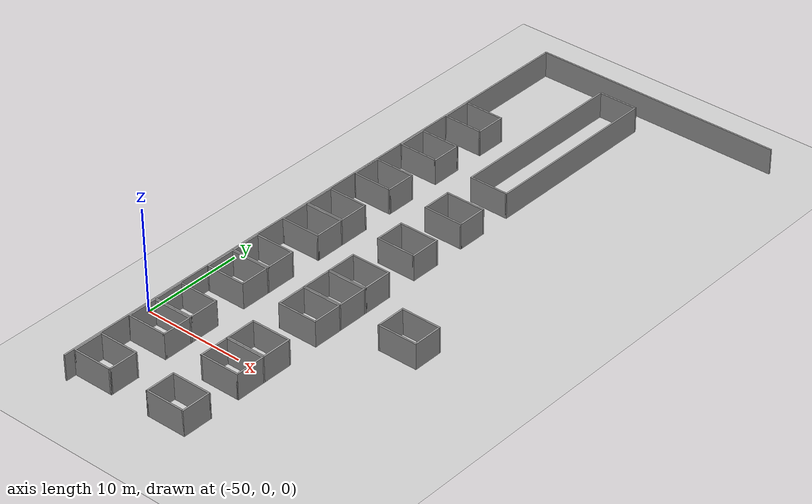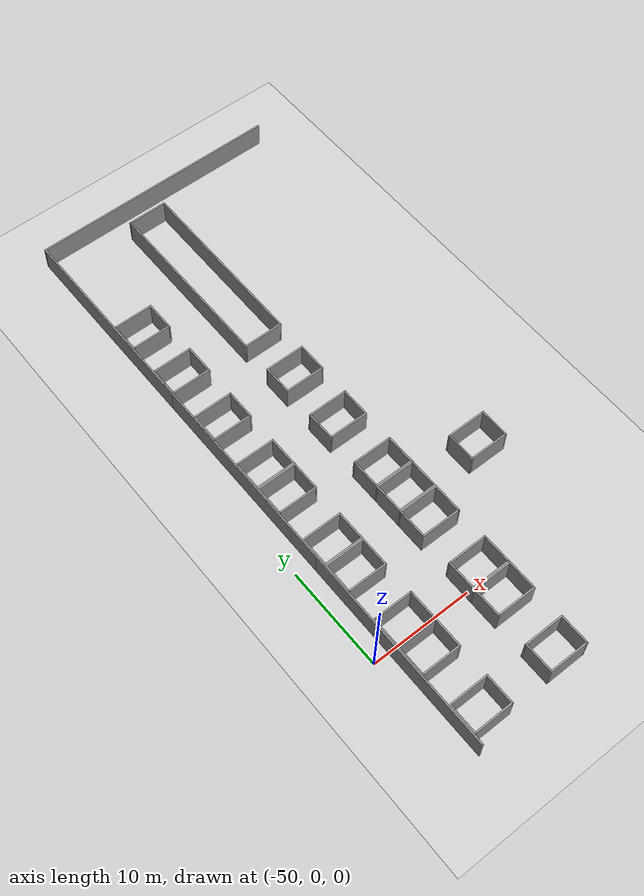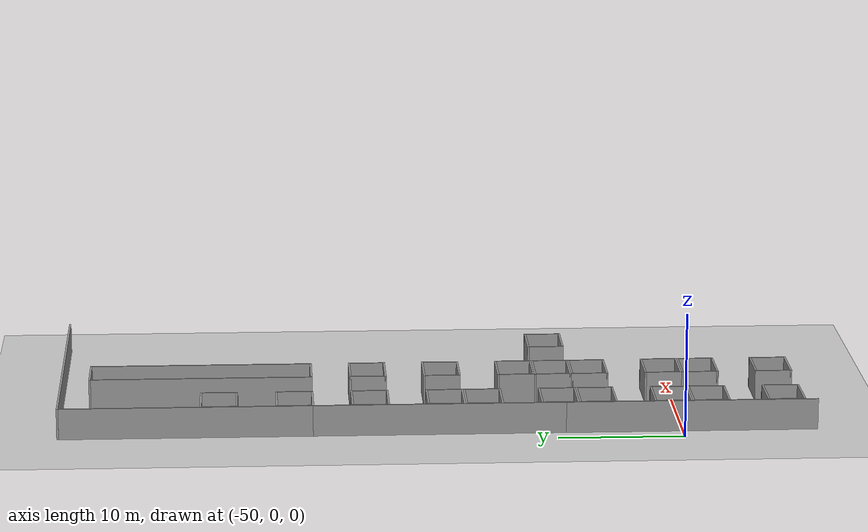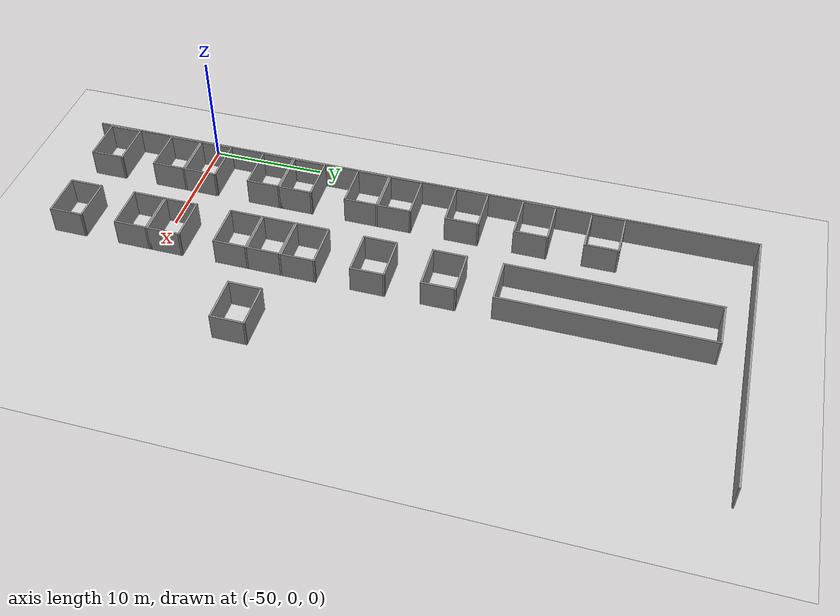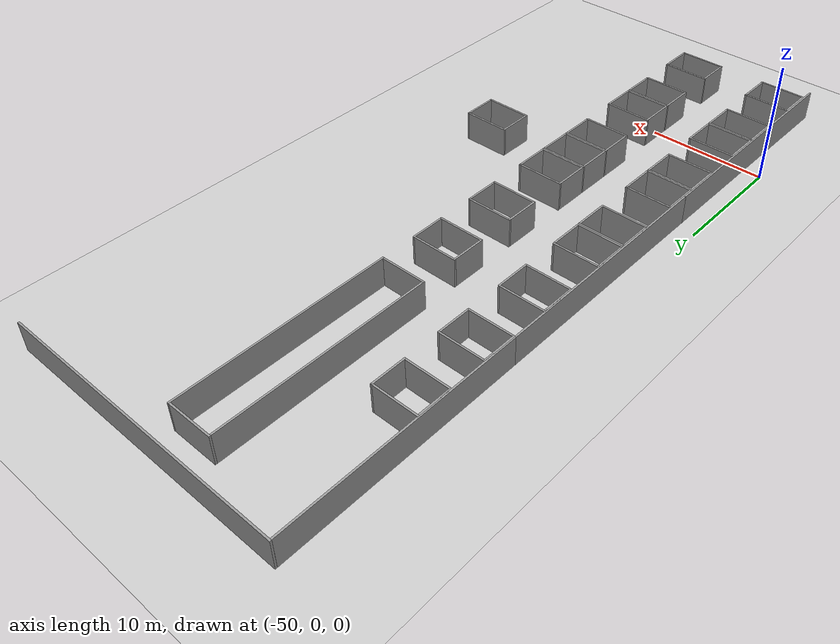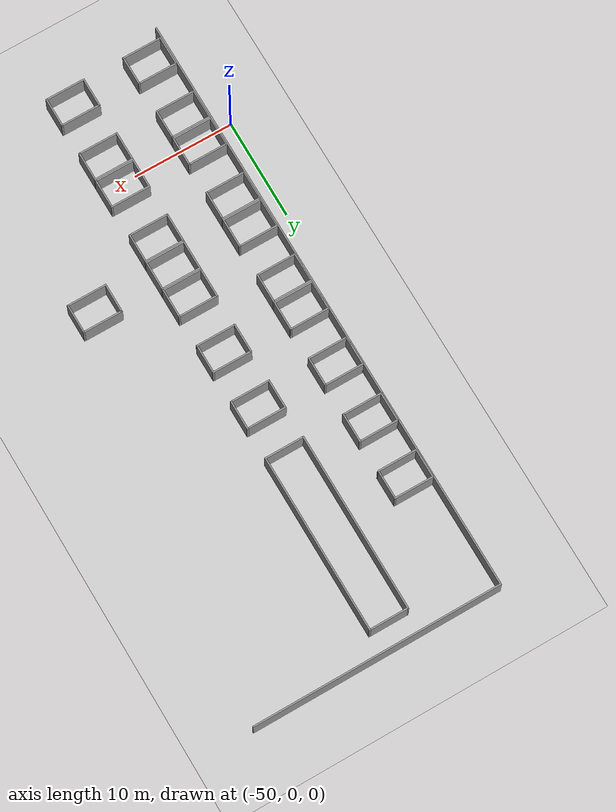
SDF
<sdf version="1.6">
 <world name="default">
  <model name="ground_plane">
   <static>1</static>
   <link name="link">
    <collision name="collision">
     <geometry><plane><normal>0 0 1</normal><size>105 105</size></plane></geometry>
     <surface>
      <contact><collide_bitmask>65535</collide_bitmask></contact>
      <friction><ode><mu>100</mu><mu2>50</mu2></ode></friction>
     </surface>
    </collision>
    <visual name="visual">
     <cast_shadows>0</cast_shadows>
     <geometry><plane><normal>0 0 1</normal><size>105 105</size></plane></geometry>
     <material>
      <script><uri>file://media/materials/scripts/gazebo.material</uri><name>Gazebo/Grey</name></script>
     </material>
    </visual>
   </link>
  </model>
  <model name="wall_v20m_0">
   <pose>-48.4193 -0.726683 0 0 -0 0</pose>
   <link name="Wall_35">
    <collision name="Wall_35_Collision">
     <geometry><box><size>20 0.15 2.5</size></box></geometry>
     <pose>0 0 1.25 0 -0 0</pose>
    </collision>
    <visual name="Wall_35_Visual">
     <pose>0 0 1.25 0 -0 0</pose>
     <geometry><box><size>20 0.15 2.5</size></box></geometry>
     <material>
      <script><uri>file://media/materials/scripts/gazebo.material</uri><name>Gazebo/Grey</name></script>
      <ambient>1 1 1 1</ambient>
     </material>
     <meta><layer>0</layer></meta>
    </visual>
    <pose>0 -0 0 0 -0 -1.5708</pose>
   </link>
   <static>1</static>
  </model>
  <model name="wall_v20m_1">
   <pose>-48.4186 19.2715 0 0 -0 0</pose>
   <link name="Wall_35">
    <collision name="Wall_35_Collision">
     <geometry><box><size>20 0.15 2.5</size></box></geometry>
     <pose>0 0 1.25 0 -0 0</pose>
    </collision>
    <visual name="Wall_35_Visual">
     <pose>0 0 1.25 0 -0 0</pose>
     <geometry><box><size>20 0.15 2.5</size></box></geometry>
     <material>
      <script><uri>file://media/materials/scripts/gazebo.material</uri><name>Gazebo/Grey</name></script>
      <ambient>1 1 1 1</ambient>
     </material>
     <meta><layer>0</layer></meta>
    </visual>
    <pose>0 -0 0 0 -0 -1.5708</pose>
   </link>
   <static>1</static>
  </model>
  <model name="wall_v20m_2">
   <pose>-48.4188 39.2704 0 0 -0 0</pose>
   <link name="Wall_35">
    <collision name="Wall_35_Collision">
     <geometry><box><size>20 0.15 2.5</size></box></geometry>
     <pose>0 0 1.25 0 -0 0</pose>
    </collision>
    <visual name="Wall_35_Visual">
     <pose>0 0 1.25 0 -0 0</pose>
     <geometry><box><size>20 0.15 2.5</size></box></geometry>
     <material>
      <script><uri>file://media/materials/scripts/gazebo.material</uri><name>Gazebo/Grey</name></script>
      <ambient>1 1 1 1</ambient>
     </material>
     <meta><layer>0</layer></meta>
    </visual>
    <pose>0 -0 0 0 -0 -1.5708</pose>
   </link>
   <static>1</static>
  </model>
  <model name="wall_25m_3">
   <pose>-35.9923 49.3467 0 0 -0 0</pose>
   <link name="Wall_28">
    <collision name="Wall_28_Collision">
     <geometry><box><size>25 0.15 2.5</size></box></geometry>
     <pose>0 0 1.25 0 -0 0</pose>
    </collision>
    <visual name="Wall_28_Visual">
     <pose>0 0 1.25 0 -0 0</pose>
     <geometry><box><size>25 0.15 2.5</size></box></geometry>
     <material>
      <script><uri>file://media/materials/scripts/gazebo.material</uri><name>Gazebo/Grey</name></script>
      <ambient>1 1 1 1</ambient>
     </material>
     <meta><layer>0</layer></meta>
    </visual>
   </link>
   <static>1</static>
  </model>
  <model name="base3x4_40">
   <pose>-46.3508 -8.23033 0 0 -0 0</pose>
   <link name="Wall_18">
    <collision name="Wall_18_Collision">
     <geometry><box><size>3 0.15 2.5</size></box></geometry>
     <pose>0 0 1.25 0 -0 0</pose>
    </collision>
    <visual name="Wall_18_Visual">
     <pose>0 0 1.25 0 -0 0</pose>
     <geometry><box><size>3 0.15 2.5</size></box></geometry>
     <material>
      <script><uri>file://media/materials/scripts/gazebo.material</uri><name>Gazebo/Grey</name></script>
      <ambient>1 1 1 1</ambient>
     </material>
     <meta><layer>0</layer></meta>
    </visual>
    <pose>-1.925 -0 0 0 -0 -1.5708</pose>
   </link>
   <link name="Wall_19">
    <collision name="Wall_19_Collision">
     <geometry><box><size>4 0.15 2.5</size></box></geometry>
     <pose>0 0 1.25 0 -0 0</pose>
    </collision>
    <visual name="Wall_19_Visual">
     <pose>0 0 1.25 0 -0 0</pose>
     <geometry><box><size>4 0.15 2.5</size></box></geometry>
     <material>
      <script><uri>file://media/materials/scripts/gazebo.material</uri><name>Gazebo/Grey</name></script>
      <ambient>1 1 1 1</ambient>
     </material>
     <meta><layer>0</layer></meta>
    </visual>
    <pose>-0 -1.425 0 0 -0 0</pose>
   </link>
   <link name="Wall_20">
    <collision name="Wall_20_Collision">
     <geometry><box><size>3 0.15 2.5</size></box></geometry>
     <pose>0 0 1.25 0 -0 0</pose>
    </collision>
    <visual name="Wall_20_Visual">
     <pose>0 0 1.25 0 -0 0</pose>
     <geometry><box><size>3 0.15 2.5</size></box></geometry>
     <material>
      <script><uri>file://media/materials/scripts/gazebo.material</uri><name>Gazebo/Grey</name></script>
      <ambient>1 1 1 1</ambient>
     </material>
     <meta><layer>0</layer></meta>
    </visual>
    <pose>1.925 -0 0 0 -0 1.5708</pose>
   </link>
   <link name="Wall_21">
    <collision name="Wall_21_Collision">
     <geometry><box><size>4 0.15 2.5</size></box></geometry>
     <pose>0 0 1.25 0 -0 0</pose>
    </collision>
    <visual name="Wall_21_Visual">
     <pose>0 0 1.25 0 -0 0</pose>
     <geometry><box><size>4 0.15 2.5</size></box></geometry>
     <material>
      <script><uri>file://media/materials/scripts/gazebo.material</uri><name>Gazebo/Grey</name></script>
      <ambient>1 1 1 1</ambient>
     </material>
     <meta><layer>0</layer></meta>
    </visual>
    <pose>-0 1.425 0 0 -0 3.14159</pose>
   </link>
   <static>1</static>
  </model>
  <model name="base3x4_42">
   <pose>-46.3729 -2.24361 0 0 -0 0</pose>
   <link name="Wall_18">
    <collision name="Wall_18_Collision">
     <geometry><box><size>3 0.15 2.5</size></box></geometry>
     <pose>0 0 1.25 0 -0 0</pose>
    </collision>
    <visual name="Wall_18_Visual">
     <pose>0 0 1.25 0 -0 0</pose>
     <geometry><box><size>3 0.15 2.5</size></box></geometry>
     <material>
      <script><uri>file://media/materials/scripts/gazebo.material</uri><name>Gazebo/Grey</name></script>
      <ambient>1 1 1 1</ambient>
     </material>
     <meta><layer>0</layer></meta>
    </visual>
    <pose>-1.925 -0 0 0 -0 -1.5708</pose>
   </link>
   <link name="Wall_19">
    <collision name="Wall_19_Collision">
     <geometry><box><size>4 0.15 2.5</size></box></geometry>
     <pose>0 0 1.25 0 -0 0</pose>
    </collision>
    <visual name="Wall_19_Visual">
     <pose>0 0 1.25 0 -0 0</pose>
     <geometry><box><size>4 0.15 2.5</size></box></geometry>
     <material>
      <script><uri>file://media/materials/scripts/gazebo.material</uri><name>Gazebo/Grey</name></script>
      <ambient>1 1 1 1</ambient>
     </material>
     <meta><layer>0</layer></meta>
    </visual>
    <pose>-0 -1.425 0 0 -0 0</pose>
   </link>
   <link name="Wall_20">
    <collision name="Wall_20_Collision">
     <geometry><box><size>3 0.15 2.5</size></box></geometry>
     <pose>0 0 1.25 0 -0 0</pose>
    </collision>
    <visual name="Wall_20_Visual">
     <pose>0 0 1.25 0 -0 0</pose>
     <geometry><box><size>3 0.15 2.5</size></box></geometry>
     <material>
      <script><uri>file://media/materials/scripts/gazebo.material</uri><name>Gazebo/Grey</name></script>
      <ambient>1 1 1 1</ambient>
     </material>
     <meta><layer>0</layer></meta>
    </visual>
    <pose>1.925 -0 0 0 -0 1.5708</pose>
   </link>
   <link name="Wall_21">
    <collision name="Wall_21_Collision">
     <geometry><box><size>4 0.15 2.5</size></box></geometry>
     <pose>0 0 1.25 0 -0 0</pose>
    </collision>
    <visual name="Wall_21_Visual">
     <pose>0 0 1.25 0 -0 0</pose>
     <geometry><box><size>4 0.15 2.5</size></box></geometry>
     <material>
      <script><uri>file://media/materials/scripts/gazebo.material</uri><name>Gazebo/Grey</name></script>
      <ambient>1 1 1 1</ambient>
     </material>
     <meta><layer>0</layer></meta>
    </visual>
    <pose>-0 1.425 0 0 -0 3.14159</pose>
   </link>
   <static>1</static>
  </model>
  <model name="base3x4_43">
   <pose>-46.3734 0.757545 0 0 -0 0</pose>
   <link name="Wall_18">
    <collision name="Wall_18_Collision">
     <geometry><box><size>3 0.15 2.5</size></box></geometry>
     <pose>0 0 1.25 0 -0 0</pose>
    </collision>
    <visual name="Wall_18_Visual">
     <pose>0 0 1.25 0 -0 0</pose>
     <geometry><box><size>3 0.15 2.5</size></box></geometry>
     <material>
      <script><uri>file://media/materials/scripts/gazebo.material</uri><name>Gazebo/Grey</name></script>
      <ambient>1 1 1 1</ambient>
     </material>
     <meta><layer>0</layer></meta>
    </visual>
    <pose>-1.925 -0 0 0 -0 -1.5708</pose>
   </link>
   <link name="Wall_19">
    <collision name="Wall_19_Collision">
     <geometry><box><size>4 0.15 2.5</size></box></geometry>
     <pose>0 0 1.25 0 -0 0</pose>
    </collision>
    <visual name="Wall_19_Visual">
     <pose>0 0 1.25 0 -0 0</pose>
     <geometry><box><size>4 0.15 2.5</size></box></geometry>
     <material>
      <script><uri>file://media/materials/scripts/gazebo.material</uri><name>Gazebo/Grey</name></script>
      <ambient>1 1 1 1</ambient>
     </material>
     <meta><layer>0</layer></meta>
    </visual>
    <pose>-0 -1.425 0 0 -0 0</pose>
   </link>
   <link name="Wall_20">
    <collision name="Wall_20_Collision">
     <geometry><box><size>3 0.15 2.5</size></box></geometry>
     <pose>0 0 1.25 0 -0 0</pose>
    </collision>
    <visual name="Wall_20_Visual">
     <pose>0 0 1.25 0 -0 0</pose>
     <geometry><box><size>3 0.15 2.5</size></box></geometry>
     <material>
      <script><uri>file://media/materials/scripts/gazebo.material</uri><name>Gazebo/Grey</name></script>
      <ambient>1 1 1 1</ambient>
     </material>
     <meta><layer>0</layer></meta>
    </visual>
    <pose>1.925 -0 0 0 -0 1.5708</pose>
   </link>
   <link name="Wall_21">
    <collision name="Wall_21_Collision">
     <geometry><box><size>4 0.15 2.5</size></box></geometry>
     <pose>0 0 1.25 0 -0 0</pose>
    </collision>
    <visual name="Wall_21_Visual">
     <pose>0 0 1.25 0 -0 0</pose>
     <geometry><box><size>4 0.15 2.5</size></box></geometry>
     <material>
      <script><uri>file://media/materials/scripts/gazebo.material</uri><name>Gazebo/Grey</name></script>
      <ambient>1 1 1 1</ambient>
     </material>
     <meta><layer>0</layer></meta>
    </visual>
    <pose>-0 1.425 0 0 -0 3.14159</pose>
   </link>
   <static>1</static>
  </model>
  <model name="base3x4_45">
   <pose>-46.3788 6.73628 0 0 -0 0</pose>
   <link name="Wall_18">
    <collision name="Wall_18_Collision">
     <geometry><box><size>3 0.15 2.5</size></box></geometry>
     <pose>0 0 1.25 0 -0 0</pose>
    </collision>
    <visual name="Wall_18_Visual">
     <pose>0 0 1.25 0 -0 0</pose>
     <geometry><box><size>3 0.15 2.5</size></box></geometry>
     <material>
      <script><uri>file://media/materials/scripts/gazebo.material</uri><name>Gazebo/Grey</name></script>
      <ambient>1 1 1 1</ambient>
     </material>
     <meta><layer>0</layer></meta>
    </visual>
    <pose>-1.925 -0 0 0 -0 -1.5708</pose>
   </link>
   <link name="Wall_19">
    <collision name="Wall_19_Collision">
     <geometry><box><size>4 0.15 2.5</size></box></geometry>
     <pose>0 0 1.25 0 -0 0</pose>
    </collision>
    <visual name="Wall_19_Visual">
     <pose>0 0 1.25 0 -0 0</pose>
     <geometry><box><size>4 0.15 2.5</size></box></geometry>
     <material>
      <script><uri>file://media/materials/scripts/gazebo.material</uri><name>Gazebo/Grey</name></script>
      <ambient>1 1 1 1</ambient>
     </material>
     <meta><layer>0</layer></meta>
    </visual>
    <pose>-0 -1.425 0 0 -0 0</pose>
   </link>
   <link name="Wall_20">
    <collision name="Wall_20_Collision">
     <geometry><box><size>3 0.15 2.5</size></box></geometry>
     <pose>0 0 1.25 0 -0 0</pose>
    </collision>
    <visual name="Wall_20_Visual">
     <pose>0 0 1.25 0 -0 0</pose>
     <geometry><box><size>3 0.15 2.5</size></box></geometry>
     <material>
      <script><uri>file://media/materials/scripts/gazebo.material</uri><name>Gazebo/Grey</name></script>
      <ambient>1 1 1 1</ambient>
     </material>
     <meta><layer>0</layer></meta>
    </visual>
    <pose>1.925 -0 0 0 -0 1.5708</pose>
   </link>
   <link name="Wall_21">
    <collision name="Wall_21_Collision">
     <geometry><box><size>4 0.15 2.5</size></box></geometry>
     <pose>0 0 1.25 0 -0 0</pose>
    </collision>
    <visual name="Wall_21_Visual">
     <pose>0 0 1.25 0 -0 0</pose>
     <geometry><box><size>4 0.15 2.5</size></box></geometry>
     <material>
      <script><uri>file://media/materials/scripts/gazebo.material</uri><name>Gazebo/Grey</name></script>
      <ambient>1 1 1 1</ambient>
     </material>
     <meta><layer>0</layer></meta>
    </visual>
    <pose>-0 1.425 0 0 -0 3.14159</pose>
   </link>
   <static>1</static>
  </model>
  <model name="base3x4_46">
   <pose>-46.3764 9.73349 0 0 -0 0</pose>
   <link name="Wall_18">
    <collision name="Wall_18_Collision">
     <geometry><box><size>3 0.15 2.5</size></box></geometry>
     <pose>0 0 1.25 0 -0 0</pose>
    </collision>
    <visual name="Wall_18_Visual">
     <pose>0 0 1.25 0 -0 0</pose>
     <geometry><box><size>3 0.15 2.5</size></box></geometry>
     <material>
      <script><uri>file://media/materials/scripts/gazebo.material</uri><name>Gazebo/Grey</name></script>
      <ambient>1 1 1 1</ambient>
     </material>
     <meta><layer>0</layer></meta>
    </visual>
    <pose>-1.925 -0 0 0 -0 -1.5708</pose>
   </link>
   <link name="Wall_19">
    <collision name="Wall_19_Collision">
     <geometry><box><size>4 0.15 2.5</size></box></geometry>
     <pose>0 0 1.25 0 -0 0</pose>
    </collision>
    <visual name="Wall_19_Visual">
     <pose>0 0 1.25 0 -0 0</pose>
     <geometry><box><size>4 0.15 2.5</size></box></geometry>
     <material>
      <script><uri>file://media/materials/scripts/gazebo.material</uri><name>Gazebo/Grey</name></script>
      <ambient>1 1 1 1</ambient>
     </material>
     <meta><layer>0</layer></meta>
    </visual>
    <pose>-0 -1.425 0 0 -0 0</pose>
   </link>
   <link name="Wall_20">
    <collision name="Wall_20_Collision">
     <geometry><box><size>3 0.15 2.5</size></box></geometry>
     <pose>0 0 1.25 0 -0 0</pose>
    </collision>
    <visual name="Wall_20_Visual">
     <pose>0 0 1.25 0 -0 0</pose>
     <geometry><box><size>3 0.15 2.5</size></box></geometry>
     <material>
      <script><uri>file://media/materials/scripts/gazebo.material</uri><name>Gazebo/Grey</name></script>
      <ambient>1 1 1 1</ambient>
     </material>
     <meta><layer>0</layer></meta>
    </visual>
    <pose>1.925 -0 0 0 -0 1.5708</pose>
   </link>
   <link name="Wall_21">
    <collision name="Wall_21_Collision">
     <geometry><box><size>4 0.15 2.5</size></box></geometry>
     <pose>0 0 1.25 0 -0 0</pose>
    </collision>
    <visual name="Wall_21_Visual">
     <pose>0 0 1.25 0 -0 0</pose>
     <geometry><box><size>4 0.15 2.5</size></box></geometry>
     <material>
      <script><uri>file://media/materials/scripts/gazebo.material</uri><name>Gazebo/Grey</name></script>
      <ambient>1 1 1 1</ambient>
     </material>
     <meta><layer>0</layer></meta>
    </visual>
    <pose>-0 1.425 0 0 -0 3.14159</pose>
   </link>
   <static>1</static>
  </model>
  <model name="base3x4_48">
   <pose>-46.3853 15.7231 0 0 -0 0</pose>
   <link name="Wall_18">
    <collision name="Wall_18_Collision">
     <geometry><box><size>3 0.15 2.5</size></box></geometry>
     <pose>0 0 1.25 0 -0 0</pose>
    </collision>
    <visual name="Wall_18_Visual">
     <pose>0 0 1.25 0 -0 0</pose>
     <geometry><box><size>3 0.15 2.5</size></box></geometry>
     <material>
      <script><uri>file://media/materials/scripts/gazebo.material</uri><name>Gazebo/Grey</name></script>
      <ambient>1 1 1 1</ambient>
     </material>
     <meta><layer>0</layer></meta>
    </visual>
    <pose>-1.925 -0 0 0 -0 -1.5708</pose>
   </link>
   <link name="Wall_19">
    <collision name="Wall_19_Collision">
     <geometry><box><size>4 0.15 2.5</size></box></geometry>
     <pose>0 0 1.25 0 -0 0</pose>
    </collision>
    <visual name="Wall_19_Visual">
     <pose>0 0 1.25 0 -0 0</pose>
     <geometry><box><size>4 0.15 2.5</size></box></geometry>
     <material>
      <script><uri>file://media/materials/scripts/gazebo.material</uri><name>Gazebo/Grey</name></script>
      <ambient>1 1 1 1</ambient>
     </material>
     <meta><layer>0</layer></meta>
    </visual>
    <pose>-0 -1.425 0 0 -0 0</pose>
   </link>
   <link name="Wall_20">
    <collision name="Wall_20_Collision">
     <geometry><box><size>3 0.15 2.5</size></box></geometry>
     <pose>0 0 1.25 0 -0 0</pose>
    </collision>
    <visual name="Wall_20_Visual">
     <pose>0 0 1.25 0 -0 0</pose>
     <geometry><box><size>3 0.15 2.5</size></box></geometry>
     <material>
      <script><uri>file://media/materials/scripts/gazebo.material</uri><name>Gazebo/Grey</name></script>
      <ambient>1 1 1 1</ambient>
     </material>
     <meta><layer>0</layer></meta>
    </visual>
    <pose>1.925 -0 0 0 -0 1.5708</pose>
   </link>
   <link name="Wall_21">
    <collision name="Wall_21_Collision">
     <geometry><box><size>4 0.15 2.5</size></box></geometry>
     <pose>0 0 1.25 0 -0 0</pose>
    </collision>
    <visual name="Wall_21_Visual">
     <pose>0 0 1.25 0 -0 0</pose>
     <geometry><box><size>4 0.15 2.5</size></box></geometry>
     <material>
      <script><uri>file://media/materials/scripts/gazebo.material</uri><name>Gazebo/Grey</name></script>
      <ambient>1 1 1 1</ambient>
     </material>
     <meta><layer>0</layer></meta>
    </visual>
    <pose>-0 1.425 0 0 -0 3.14159</pose>
   </link>
   <static>1</static>
  </model>
  <model name="base3x4_49">
   <pose>-46.3875 18.7223 0 0 -0 0</pose>
   <link name="Wall_18">
    <collision name="Wall_18_Collision">
     <geometry><box><size>3 0.15 2.5</size></box></geometry>
     <pose>0 0 1.25 0 -0 0</pose>
    </collision>
    <visual name="Wall_18_Visual">
     <pose>0 0 1.25 0 -0 0</pose>
     <geometry><box><size>3 0.15 2.5</size></box></geometry>
     <material>
      <script><uri>file://media/materials/scripts/gazebo.material</uri><name>Gazebo/Grey</name></script>
      <ambient>1 1 1 1</ambient>
     </material>
     <meta><layer>0</layer></meta>
    </visual>
    <pose>-1.925 -0 0 0 -0 -1.5708</pose>
   </link>
   <link name="Wall_19">
    <collision name="Wall_19_Collision">
     <geometry><box><size>4 0.15 2.5</size></box></geometry>
     <pose>0 0 1.25 0 -0 0</pose>
    </collision>
    <visual name="Wall_19_Visual">
     <pose>0 0 1.25 0 -0 0</pose>
     <geometry><box><size>4 0.15 2.5</size></box></geometry>
     <material>
      <script><uri>file://media/materials/scripts/gazebo.material</uri><name>Gazebo/Grey</name></script>
      <ambient>1 1 1 1</ambient>
     </material>
     <meta><layer>0</layer></meta>
    </visual>
    <pose>-0 -1.425 0 0 -0 0</pose>
   </link>
   <link name="Wall_20">
    <collision name="Wall_20_Collision">
     <geometry><box><size>3 0.15 2.5</size></box></geometry>
     <pose>0 0 1.25 0 -0 0</pose>
    </collision>
    <visual name="Wall_20_Visual">
     <pose>0 0 1.25 0 -0 0</pose>
     <geometry><box><size>3 0.15 2.5</size></box></geometry>
     <material>
      <script><uri>file://media/materials/scripts/gazebo.material</uri><name>Gazebo/Grey</name></script>
      <ambient>1 1 1 1</ambient>
     </material>
     <meta><layer>0</layer></meta>
    </visual>
    <pose>1.925 -0 0 0 -0 1.5708</pose>
   </link>
   <link name="Wall_21">
    <collision name="Wall_21_Collision">
     <geometry><box><size>4 0.15 2.5</size></box></geometry>
     <pose>0 0 1.25 0 -0 0</pose>
    </collision>
    <visual name="Wall_21_Visual">
     <pose>0 0 1.25 0 -0 0</pose>
     <geometry><box><size>4 0.15 2.5</size></box></geometry>
     <material>
      <script><uri>file://media/materials/scripts/gazebo.material</uri><name>Gazebo/Grey</name></script>
      <ambient>1 1 1 1</ambient>
     </material>
     <meta><layer>0</layer></meta>
    </visual>
    <pose>-0 1.425 0 0 -0 3.14159</pose>
   </link>
   <static>1</static>
  </model>
  <model name="base3x4_51">
   <pose>-46.3918 24.7091 0 0 -0 0</pose>
   <link name="Wall_18">
    <collision name="Wall_18_Collision">
     <geometry><box><size>3 0.15 2.5</size></box></geometry>
     <pose>0 0 1.25 0 -0 0</pose>
    </collision>
    <visual name="Wall_18_Visual">
     <pose>0 0 1.25 0 -0 0</pose>
     <geometry><box><size>3 0.15 2.5</size></box></geometry>
     <material>
      <script><uri>file://media/materials/scripts/gazebo.material</uri><name>Gazebo/Grey</name></script>
      <ambient>1 1 1 1</ambient>
     </material>
     <meta><layer>0</layer></meta>
    </visual>
    <pose>-1.925 -0 0 0 -0 -1.5708</pose>
   </link>
   <link name="Wall_19">
    <collision name="Wall_19_Collision">
     <geometry><box><size>4 0.15 2.5</size></box></geometry>
     <pose>0 0 1.25 0 -0 0</pose>
    </collision>
    <visual name="Wall_19_Visual">
     <pose>0 0 1.25 0 -0 0</pose>
     <geometry><box><size>4 0.15 2.5</size></box></geometry>
     <material>
      <script><uri>file://media/materials/scripts/gazebo.material</uri><name>Gazebo/Grey</name></script>
      <ambient>1 1 1 1</ambient>
     </material>
     <meta><layer>0</layer></meta>
    </visual>
    <pose>-0 -1.425 0 0 -0 0</pose>
   </link>
   <link name="Wall_20">
    <collision name="Wall_20_Collision">
     <geometry><box><size>3 0.15 2.5</size></box></geometry>
     <pose>0 0 1.25 0 -0 0</pose>
    </collision>
    <visual name="Wall_20_Visual">
     <pose>0 0 1.25 0 -0 0</pose>
     <geometry><box><size>3 0.15 2.5</size></box></geometry>
     <material>
      <script><uri>file://media/materials/scripts/gazebo.material</uri><name>Gazebo/Grey</name></script>
      <ambient>1 1 1 1</ambient>
     </material>
     <meta><layer>0</layer></meta>
    </visual>
    <pose>1.925 -0 0 0 -0 1.5708</pose>
   </link>
   <link name="Wall_21">
    <collision name="Wall_21_Collision">
     <geometry><box><size>4 0.15 2.5</size></box></geometry>
     <pose>0 0 1.25 0 -0 0</pose>
    </collision>
    <visual name="Wall_21_Visual">
     <pose>0 0 1.25 0 -0 0</pose>
     <geometry><box><size>4 0.15 2.5</size></box></geometry>
     <material>
      <script><uri>file://media/materials/scripts/gazebo.material</uri><name>Gazebo/Grey</name></script>
      <ambient>1 1 1 1</ambient>
     </material>
     <meta><layer>0</layer></meta>
    </visual>
    <pose>-0 1.425 0 0 -0 3.14159</pose>
   </link>
   <static>1</static>
  </model>
  <model name="base3x4_55">
   <pose>-46.398 36.6733 0 0 -0 0</pose>
   <link name="Wall_18">
    <collision name="Wall_18_Collision">
     <geometry><box><size>3 0.15 2.5</size></box></geometry>
     <pose>0 0 1.25 0 -0 0</pose>
    </collision>
    <visual name="Wall_18_Visual">
     <pose>0 0 1.25 0 -0 0</pose>
     <geometry><box><size>3 0.15 2.5</size></box></geometry>
     <material>
      <script><uri>file://media/materials/scripts/gazebo.material</uri><name>Gazebo/Grey</name></script>
      <ambient>1 1 1 1</ambient>
     </material>
     <meta><layer>0</layer></meta>
    </visual>
    <pose>-1.925 -0 0 0 -0 -1.5708</pose>
   </link>
   <link name="Wall_19">
    <collision name="Wall_19_Collision">
     <geometry><box><size>4 0.15 2.5</size></box></geometry>
     <pose>0 0 1.25 0 -0 0</pose>
    </collision>
    <visual name="Wall_19_Visual">
     <pose>0 0 1.25 0 -0 0</pose>
     <geometry><box><size>4 0.15 2.5</size></box></geometry>
     <material>
      <script><uri>file://media/materials/scripts/gazebo.material</uri><name>Gazebo/Grey</name></script>
      <ambient>1 1 1 1</ambient>
     </material>
     <meta><layer>0</layer></meta>
    </visual>
    <pose>-0 -1.425 0 0 -0 0</pose>
   </link>
   <link name="Wall_20">
    <collision name="Wall_20_Collision">
     <geometry><box><size>3 0.15 2.5</size></box></geometry>
     <pose>0 0 1.25 0 -0 0</pose>
    </collision>
    <visual name="Wall_20_Visual">
     <pose>0 0 1.25 0 -0 0</pose>
     <geometry><box><size>3 0.15 2.5</size></box></geometry>
     <material>
      <script><uri>file://media/materials/scripts/gazebo.material</uri><name>Gazebo/Grey</name></script>
      <ambient>1 1 1 1</ambient>
     </material>
     <meta><layer>0</layer></meta>
    </visual>
    <pose>1.925 -0 0 0 -0 1.5708</pose>
   </link>
   <link name="Wall_21">
    <collision name="Wall_21_Collision">
     <geometry><box><size>4 0.15 2.5</size></box></geometry>
     <pose>0 0 1.25 0 -0 0</pose>
    </collision>
    <visual name="Wall_21_Visual">
     <pose>0 0 1.25 0 -0 0</pose>
     <geometry><box><size>4 0.15 2.5</size></box></geometry>
     <material>
      <script><uri>file://media/materials/scripts/gazebo.material</uri><name>Gazebo/Grey</name></script>
      <ambient>1 1 1 1</ambient>
     </material>
     <meta><layer>0</layer></meta>
    </visual>
    <pose>-0 1.425 0 0 -0 3.14159</pose>
   </link>
   <static>1</static>
  </model>
  <model name="base3x4_60">
   <pose>-38.3722 -8.24435 0 0 -0 0</pose>
   <link name="Wall_18">
    <collision name="Wall_18_Collision">
     <geometry><box><size>3 0.15 2.5</size></box></geometry>
     <pose>0 0 1.25 0 -0 0</pose>
    </collision>
    <visual name="Wall_18_Visual">
     <pose>0 0 1.25 0 -0 0</pose>
     <geometry><box><size>3 0.15 2.5</size></box></geometry>
     <material>
      <script><uri>file://media/materials/scripts/gazebo.material</uri><name>Gazebo/Grey</name></script>
      <ambient>1 1 1 1</ambient>
     </material>
     <meta><layer>0</layer></meta>
    </visual>
    <pose>-1.925 -0 0 0 -0 -1.5708</pose>
   </link>
   <link name="Wall_19">
    <collision name="Wall_19_Collision">
     <geometry><box><size>4 0.15 2.5</size></box></geometry>
     <pose>0 0 1.25 0 -0 0</pose>
    </collision>
    <visual name="Wall_19_Visual">
     <pose>0 0 1.25 0 -0 0</pose>
     <geometry><box><size>4 0.15 2.5</size></box></geometry>
     <material>
      <script><uri>file://media/materials/scripts/gazebo.material</uri><name>Gazebo/Grey</name></script>
      <ambient>1 1 1 1</ambient>
     </material>
     <meta><layer>0</layer></meta>
    </visual>
    <pose>-0 -1.425 0 0 -0 0</pose>
   </link>
   <link name="Wall_20">
    <collision name="Wall_20_Collision">
     <geometry><box><size>3 0.15 2.5</size></box></geometry>
     <pose>0 0 1.25 0 -0 0</pose>
    </collision>
    <visual name="Wall_20_Visual">
     <pose>0 0 1.25 0 -0 0</pose>
     <geometry><box><size>3 0.15 2.5</size></box></geometry>
     <material>
      <script><uri>file://media/materials/scripts/gazebo.material</uri><name>Gazebo/Grey</name></script>
      <ambient>1 1 1 1</ambient>
     </material>
     <meta><layer>0</layer></meta>
    </visual>
    <pose>1.925 -0 0 0 -0 1.5708</pose>
   </link>
   <link name="Wall_21">
    <collision name="Wall_21_Collision">
     <geometry><box><size>4 0.15 2.5</size></box></geometry>
     <pose>0 0 1.25 0 -0 0</pose>
    </collision>
    <visual name="Wall_21_Visual">
     <pose>0 0 1.25 0 -0 0</pose>
     <geometry><box><size>4 0.15 2.5</size></box></geometry>
     <material>
      <script><uri>file://media/materials/scripts/gazebo.material</uri><name>Gazebo/Grey</name></script>
      <ambient>1 1 1 1</ambient>
     </material>
     <meta><layer>0</layer></meta>
    </visual>
    <pose>-0 1.425 0 0 -0 3.14159</pose>
   </link>
   <static>1</static>
  </model>
  <model name="base3x4_62">
   <pose>-38.3835 -2.2467 0 0 -0 0</pose>
   <link name="Wall_18">
    <collision name="Wall_18_Collision">
     <geometry><box><size>3 0.15 2.5</size></box></geometry>
     <pose>0 0 1.25 0 -0 0</pose>
    </collision>
    <visual name="Wall_18_Visual">
     <pose>0 0 1.25 0 -0 0</pose>
     <geometry><box><size>3 0.15 2.5</size></box></geometry>
     <material>
      <script><uri>file://media/materials/scripts/gazebo.material</uri><name>Gazebo/Grey</name></script>
      <ambient>1 1 1 1</ambient>
     </material>
     <meta><layer>0</layer></meta>
    </visual>
    <pose>-1.925 -0 0 0 -0 -1.5708</pose>
   </link>
   <link name="Wall_19">
    <collision name="Wall_19_Collision">
     <geometry><box><size>4 0.15 2.5</size></box></geometry>
     <pose>0 0 1.25 0 -0 0</pose>
    </collision>
    <visual name="Wall_19_Visual">
     <pose>0 0 1.25 0 -0 0</pose>
     <geometry><box><size>4 0.15 2.5</size></box></geometry>
     <material>
      <script><uri>file://media/materials/scripts/gazebo.material</uri><name>Gazebo/Grey</name></script>
      <ambient>1 1 1 1</ambient>
     </material>
     <meta><layer>0</layer></meta>
    </visual>
    <pose>-0 -1.425 0 0 -0 0</pose>
   </link>
   <link name="Wall_20">
    <collision name="Wall_20_Collision">
     <geometry><box><size>3 0.15 2.5</size></box></geometry>
     <pose>0 0 1.25 0 -0 0</pose>
    </collision>
    <visual name="Wall_20_Visual">
     <pose>0 0 1.25 0 -0 0</pose>
     <geometry><box><size>3 0.15 2.5</size></box></geometry>
     <material>
      <script><uri>file://media/materials/scripts/gazebo.material</uri><name>Gazebo/Grey</name></script>
      <ambient>1 1 1 1</ambient>
     </material>
     <meta><layer>0</layer></meta>
    </visual>
    <pose>1.925 -0 0 0 -0 1.5708</pose>
   </link>
   <link name="Wall_21">
    <collision name="Wall_21_Collision">
     <geometry><box><size>4 0.15 2.5</size></box></geometry>
     <pose>0 0 1.25 0 -0 0</pose>
    </collision>
    <visual name="Wall_21_Visual">
     <pose>0 0 1.25 0 -0 0</pose>
     <geometry><box><size>4 0.15 2.5</size></box></geometry>
     <material>
      <script><uri>file://media/materials/scripts/gazebo.material</uri><name>Gazebo/Grey</name></script>
      <ambient>1 1 1 1</ambient>
     </material>
     <meta><layer>0</layer></meta>
    </visual>
    <pose>-0 1.425 0 0 -0 3.14159</pose>
   </link>
   <static>1</static>
  </model>
  <model name="base3x4_63">
   <pose>-38.384 0.75217 0 0 -0 0</pose>
   <link name="Wall_18">
    <collision name="Wall_18_Collision">
     <geometry><box><size>3 0.15 2.5</size></box></geometry>
     <pose>0 0 1.25 0 -0 0</pose>
    </collision>
    <visual name="Wall_18_Visual">
     <pose>0 0 1.25 0 -0 0</pose>
     <geometry><box><size>3 0.15 2.5</size></box></geometry>
     <material>
      <script><uri>file://media/materials/scripts/gazebo.material</uri><name>Gazebo/Grey</name></script>
      <ambient>1 1 1 1</ambient>
     </material>
     <meta><layer>0</layer></meta>
    </visual>
    <pose>-1.925 -0 0 0 -0 -1.5708</pose>
   </link>
   <link name="Wall_19">
    <collision name="Wall_19_Collision">
     <geometry><box><size>4 0.15 2.5</size></box></geometry>
     <pose>0 0 1.25 0 -0 0</pose>
    </collision>
    <visual name="Wall_19_Visual">
     <pose>0 0 1.25 0 -0 0</pose>
     <geometry><box><size>4 0.15 2.5</size></box></geometry>
     <material>
      <script><uri>file://media/materials/scripts/gazebo.material</uri><name>Gazebo/Grey</name></script>
      <ambient>1 1 1 1</ambient>
     </material>
     <meta><layer>0</layer></meta>
    </visual>
    <pose>-0 -1.425 0 0 -0 0</pose>
   </link>
   <link name="Wall_20">
    <collision name="Wall_20_Collision">
     <geometry><box><size>3 0.15 2.5</size></box></geometry>
     <pose>0 0 1.25 0 -0 0</pose>
    </collision>
    <visual name="Wall_20_Visual">
     <pose>0 0 1.25 0 -0 0</pose>
     <geometry><box><size>3 0.15 2.5</size></box></geometry>
     <material>
      <script><uri>file://media/materials/scripts/gazebo.material</uri><name>Gazebo/Grey</name></script>
      <ambient>1 1 1 1</ambient>
     </material>
     <meta><layer>0</layer></meta>
    </visual>
    <pose>1.925 -0 0 0 -0 1.5708</pose>
   </link>
   <link name="Wall_21">
    <collision name="Wall_21_Collision">
     <geometry><box><size>4 0.15 2.5</size></box></geometry>
     <pose>0 0 1.25 0 -0 0</pose>
    </collision>
    <visual name="Wall_21_Visual">
     <pose>0 0 1.25 0 -0 0</pose>
     <geometry><box><size>4 0.15 2.5</size></box></geometry>
     <material>
      <script><uri>file://media/materials/scripts/gazebo.material</uri><name>Gazebo/Grey</name></script>
      <ambient>1 1 1 1</ambient>
     </material>
     <meta><layer>0</layer></meta>
    </visual>
    <pose>-0 1.425 0 0 -0 3.14159</pose>
   </link>
   <static>1</static>
  </model>
  <model name="base3x4_65">
   <pose>-38.4437 6.73627 0 0 -0 0</pose>
   <link name="Wall_18">
    <collision name="Wall_18_Collision">
     <geometry><box><size>3 0.15 2.5</size></box></geometry>
     <pose>0 0 1.25 0 -0 0</pose>
    </collision>
    <visual name="Wall_18_Visual">
     <pose>0 0 1.25 0 -0 0</pose>
     <geometry><box><size>3 0.15 2.5</size></box></geometry>
     <material>
      <script><uri>file://media/materials/scripts/gazebo.material</uri><name>Gazebo/Grey</name></script>
      <ambient>1 1 1 1</ambient>
     </material>
     <meta><layer>0</layer></meta>
    </visual>
    <pose>-1.925 -0 0 0 -0 -1.5708</pose>
   </link>
   <link name="Wall_19">
    <collision name="Wall_19_Collision">
     <geometry><box><size>4 0.15 2.5</size></box></geometry>
     <pose>0 0 1.25 0 -0 0</pose>
    </collision>
    <visual name="Wall_19_Visual">
     <pose>0 0 1.25 0 -0 0</pose>
     <geometry><box><size>4 0.15 2.5</size></box></geometry>
     <material>
      <script><uri>file://media/materials/scripts/gazebo.material</uri><name>Gazebo/Grey</name></script>
      <ambient>1 1 1 1</ambient>
     </material>
     <meta><layer>0</layer></meta>
    </visual>
    <pose>-0 -1.425 0 0 -0 0</pose>
   </link>
   <link name="Wall_20">
    <collision name="Wall_20_Collision">
     <geometry><box><size>3 0.15 2.5</size></box></geometry>
     <pose>0 0 1.25 0 -0 0</pose>
    </collision>
    <visual name="Wall_20_Visual">
     <pose>0 0 1.25 0 -0 0</pose>
     <geometry><box><size>3 0.15 2.5</size></box></geometry>
     <material>
      <script><uri>file://media/materials/scripts/gazebo.material</uri><name>Gazebo/Grey</name></script>
      <ambient>1 1 1 1</ambient>
     </material>
     <meta><layer>0</layer></meta>
    </visual>
    <pose>1.925 -0 0 0 -0 1.5708</pose>
   </link>
   <link name="Wall_21">
    <collision name="Wall_21_Collision">
     <geometry><box><size>4 0.15 2.5</size></box></geometry>
     <pose>0 0 1.25 0 -0 0</pose>
    </collision>
    <visual name="Wall_21_Visual">
     <pose>0 0 1.25 0 -0 0</pose>
     <geometry><box><size>4 0.15 2.5</size></box></geometry>
     <material>
      <script><uri>file://media/materials/scripts/gazebo.material</uri><name>Gazebo/Grey</name></script>
      <ambient>1 1 1 1</ambient>
     </material>
     <meta><layer>0</layer></meta>
    </visual>
    <pose>-0 1.425 0 0 -0 3.14159</pose>
   </link>
   <static>1</static>
  </model>
  <model name="base3x4_4">
   <pose>-30.4282 9.69605 0 0 -0 0</pose>
   <link name="Wall_18">
    <collision name="Wall_18_Collision">
     <geometry><box><size>3 0.15 2.5</size></box></geometry>
     <pose>0 0 1.25 0 -0 0</pose>
    </collision>
    <visual name="Wall_18_Visual">
     <pose>0 0 1.25 0 -0 0</pose>
     <geometry><box><size>3 0.15 2.5</size></box></geometry>
     <material>
      <script><uri>file://media/materials/scripts/gazebo.material</uri><name>Gazebo/Grey</name></script>
      <ambient>1 1 1 1</ambient>
     </material>
     <meta><layer>0</layer></meta>
    </visual>
    <pose>-1.925 -0 0 0 -0 -1.5708</pose>
   </link>
   <link name="Wall_19">
    <collision name="Wall_19_Collision">
     <geometry><box><size>4 0.15 2.5</size></box></geometry>
     <pose>0 0 1.25 0 -0 0</pose>
    </collision>
    <visual name="Wall_19_Visual">
     <pose>0 0 1.25 0 -0 0</pose>
     <geometry><box><size>4 0.15 2.5</size></box></geometry>
     <material>
      <script><uri>file://media/materials/scripts/gazebo.material</uri><name>Gazebo/Grey</name></script>
      <ambient>1 1 1 1</ambient>
     </material>
     <meta><layer>0</layer></meta>
    </visual>
    <pose>-0 -1.425 0 0 -0 0</pose>
   </link>
   <link name="Wall_20">
    <collision name="Wall_20_Collision">
     <geometry><box><size>3 0.15 2.5</size></box></geometry>
     <pose>0 0 1.25 0 -0 0</pose>
    </collision>
    <visual name="Wall_20_Visual">
     <pose>0 0 1.25 0 -0 0</pose>
     <geometry><box><size>3 0.15 2.5</size></box></geometry>
     <material>
      <script><uri>file://media/materials/scripts/gazebo.material</uri><name>Gazebo/Grey</name></script>
      <ambient>1 1 1 1</ambient>
     </material>
     <meta><layer>0</layer></meta>
    </visual>
    <pose>1.925 -0 0 0 -0 1.5708</pose>
   </link>
   <link name="Wall_21">
    <collision name="Wall_21_Collision">
     <geometry><box><size>4 0.15 2.5</size></box></geometry>
     <pose>0 0 1.25 0 -0 0</pose>
    </collision>
    <visual name="Wall_21_Visual">
     <pose>0 0 1.25 0 -0 0</pose>
     <geometry><box><size>4 0.15 2.5</size></box></geometry>
     <material>
      <script><uri>file://media/materials/scripts/gazebo.material</uri><name>Gazebo/Grey</name></script>
      <ambient>1 1 1 1</ambient>
     </material>
     <meta><layer>0</layer></meta>
    </visual>
    <pose>-0 1.425 0 0 -0 3.14159</pose>
   </link>
   <static>1</static>
  </model>
  <model name="base3x4_10">
   <pose>-38.4448 9.72417 0 0 -0 0</pose>
   <link name="Wall_18">
    <collision name="Wall_18_Collision">
     <geometry><box><size>3 0.15 2.5</size></box></geometry>
     <pose>0 0 1.25 0 -0 0</pose>
    </collision>
    <visual name="Wall_18_Visual">
     <pose>0 0 1.25 0 -0 0</pose>
     <geometry><box><size>3 0.15 2.5</size></box></geometry>
     <material>
      <script><uri>file://media/materials/scripts/gazebo.material</uri><name>Gazebo/Grey</name></script>
      <ambient>1 1 1 1</ambient>
     </material>
     <meta><layer>0</layer></meta>
    </visual>
    <pose>-1.925 -0 0 0 -0 -1.5708</pose>
   </link>
   <link name="Wall_19">
    <collision name="Wall_19_Collision">
     <geometry><box><size>4 0.15 2.5</size></box></geometry>
     <pose>0 0 1.25 0 -0 0</pose>
    </collision>
    <visual name="Wall_19_Visual">
     <pose>0 0 1.25 0 -0 0</pose>
     <geometry><box><size>4 0.15 2.5</size></box></geometry>
     <material>
      <script><uri>file://media/materials/scripts/gazebo.material</uri><name>Gazebo/Grey</name></script>
      <ambient>1 1 1 1</ambient>
     </material>
     <meta><layer>0</layer></meta>
    </visual>
    <pose>-0 -1.425 0 0 -0 0</pose>
   </link>
   <link name="Wall_20">
    <collision name="Wall_20_Collision">
     <geometry><box><size>3 0.15 2.5</size></box></geometry>
     <pose>0 0 1.25 0 -0 0</pose>
    </collision>
    <visual name="Wall_20_Visual">
     <pose>0 0 1.25 0 -0 0</pose>
     <geometry><box><size>3 0.15 2.5</size></box></geometry>
     <material>
      <script><uri>file://media/materials/scripts/gazebo.material</uri><name>Gazebo/Grey</name></script>
      <ambient>1 1 1 1</ambient>
     </material>
     <meta><layer>0</layer></meta>
    </visual>
    <pose>1.925 -0 0 0 -0 1.5708</pose>
   </link>
   <link name="Wall_21">
    <collision name="Wall_21_Collision">
     <geometry><box><size>4 0.15 2.5</size></box></geometry>
     <pose>0 0 1.25 0 -0 0</pose>
    </collision>
    <visual name="Wall_21_Visual">
     <pose>0 0 1.25 0 -0 0</pose>
     <geometry><box><size>4 0.15 2.5</size></box></geometry>
     <material>
      <script><uri>file://media/materials/scripts/gazebo.material</uri><name>Gazebo/Grey</name></script>
      <ambient>1 1 1 1</ambient>
     </material>
     <meta><layer>0</layer></meta>
    </visual>
    <pose>-0 1.425 0 0 -0 3.14159</pose>
   </link>
   <static>1</static>
  </model>
  <model name="base3x4_44">
   <pose>-38.4474 12.7122 0 0 -0 0</pose>
   <link name="Wall_18">
    <collision name="Wall_18_Collision">
     <geometry><box><size>3 0.15 2.5</size></box></geometry>
     <pose>0 0 1.25 0 -0 0</pose>
    </collision>
    <visual name="Wall_18_Visual">
     <pose>0 0 1.25 0 -0 0</pose>
     <geometry><box><size>3 0.15 2.5</size></box></geometry>
     <material>
      <script><uri>file://media/materials/scripts/gazebo.material</uri><name>Gazebo/Grey</name></script>
      <ambient>1 1 1 1</ambient>
     </material>
     <meta><layer>0</layer></meta>
    </visual>
    <pose>-1.925 -0 0 0 -0 -1.5708</pose>
   </link>
   <link name="Wall_19">
    <collision name="Wall_19_Collision">
     <geometry><box><size>4 0.15 2.5</size></box></geometry>
     <pose>0 0 1.25 0 -0 0</pose>
    </collision>
    <visual name="Wall_19_Visual">
     <pose>0 0 1.25 0 -0 0</pose>
     <geometry><box><size>4 0.15 2.5</size></box></geometry>
     <material>
      <script><uri>file://media/materials/scripts/gazebo.material</uri><name>Gazebo/Grey</name></script>
      <ambient>1 1 1 1</ambient>
     </material>
     <meta><layer>0</layer></meta>
    </visual>
    <pose>-0 -1.425 0 0 -0 0</pose>
   </link>
   <link name="Wall_20">
    <collision name="Wall_20_Collision">
     <geometry><box><size>3 0.15 2.5</size></box></geometry>
     <pose>0 0 1.25 0 -0 0</pose>
    </collision>
    <visual name="Wall_20_Visual">
     <pose>0 0 1.25 0 -0 0</pose>
     <geometry><box><size>3 0.15 2.5</size></box></geometry>
     <material>
      <script><uri>file://media/materials/scripts/gazebo.material</uri><name>Gazebo/Grey</name></script>
      <ambient>1 1 1 1</ambient>
     </material>
     <meta><layer>0</layer></meta>
    </visual>
    <pose>1.925 -0 0 0 -0 1.5708</pose>
   </link>
   <link name="Wall_21">
    <collision name="Wall_21_Collision">
     <geometry><box><size>4 0.15 2.5</size></box></geometry>
     <pose>0 0 1.25 0 -0 0</pose>
    </collision>
    <visual name="Wall_21_Visual">
     <pose>0 0 1.25 0 -0 0</pose>
     <geometry><box><size>4 0.15 2.5</size></box></geometry>
     <material>
      <script><uri>file://media/materials/scripts/gazebo.material</uri><name>Gazebo/Grey</name></script>
      <ambient>1 1 1 1</ambient>
     </material>
     <meta><layer>0</layer></meta>
    </visual>
    <pose>-0 1.425 0 0 -0 3.14159</pose>
   </link>
   <static>1</static>
  </model>
  <model name="base3x4_86">
   <pose>-38.4521 18.7044 0 0 -0 0</pose>
   <link name="Wall_18">
    <collision name="Wall_18_Collision">
     <geometry><box><size>3 0.15 2.5</size></box></geometry>
     <pose>0 0 1.25 0 -0 0</pose>
    </collision>
    <visual name="Wall_18_Visual">
     <pose>0 0 1.25 0 -0 0</pose>
     <geometry><box><size>3 0.15 2.5</size></box></geometry>
     <material>
      <script><uri>file://media/materials/scripts/gazebo.material</uri><name>Gazebo/Grey</name></script>
      <ambient>1 1 1 1</ambient>
     </material>
     <meta><layer>0</layer></meta>
    </visual>
    <pose>-1.925 -0 0 0 -0 -1.5708</pose>
   </link>
   <link name="Wall_19">
    <collision name="Wall_19_Collision">
     <geometry><box><size>4 0.15 2.5</size></box></geometry>
     <pose>0 0 1.25 0 -0 0</pose>
    </collision>
    <visual name="Wall_19_Visual">
     <pose>0 0 1.25 0 -0 0</pose>
     <geometry><box><size>4 0.15 2.5</size></box></geometry>
     <material>
      <script><uri>file://media/materials/scripts/gazebo.material</uri><name>Gazebo/Grey</name></script>
      <ambient>1 1 1 1</ambient>
     </material>
     <meta><layer>0</layer></meta>
    </visual>
    <pose>-0 -1.425 0 0 -0 0</pose>
   </link>
   <link name="Wall_20">
    <collision name="Wall_20_Collision">
     <geometry><box><size>3 0.15 2.5</size></box></geometry>
     <pose>0 0 1.25 0 -0 0</pose>
    </collision>
    <visual name="Wall_20_Visual">
     <pose>0 0 1.25 0 -0 0</pose>
     <geometry><box><size>3 0.15 2.5</size></box></geometry>
     <material>
      <script><uri>file://media/materials/scripts/gazebo.material</uri><name>Gazebo/Grey</name></script>
      <ambient>1 1 1 1</ambient>
     </material>
     <meta><layer>0</layer></meta>
    </visual>
    <pose>1.925 -0 0 0 -0 1.5708</pose>
   </link>
   <link name="Wall_21">
    <collision name="Wall_21_Collision">
     <geometry><box><size>4 0.15 2.5</size></box></geometry>
     <pose>0 0 1.25 0 -0 0</pose>
    </collision>
    <visual name="Wall_21_Visual">
     <pose>0 0 1.25 0 -0 0</pose>
     <geometry><box><size>4 0.15 2.5</size></box></geometry>
     <material>
      <script><uri>file://media/materials/scripts/gazebo.material</uri><name>Gazebo/Grey</name></script>
      <ambient>1 1 1 1</ambient>
     </material>
     <meta><layer>0</layer></meta>
    </visual>
    <pose>-0 1.425 0 0 -0 3.14159</pose>
   </link>
   <static>1</static>
  </model>
  <model name="base18x4_0">
   <pose>-38.4538 38.1688 0 0 -0 0</pose>
   <link name="Wall_6">
    <collision name="Wall_6_Collision">
     <geometry><box><size>18 0.15 2.5</size></box></geometry>
     <pose>0 0 1.25 0 -0 0</pose>
    </collision>
    <visual name="Wall_6_Visual">
     <pose>0 0 1.25 0 -0 0</pose>
     <geometry><box><size>18 0.15 2.5</size></box></geometry>
     <material>
      <script><uri>file://media/materials/scripts/gazebo.material</uri><name>Gazebo/Grey</name></script>
      <ambient>1 1 1 1</ambient>
     </material>
     <meta><layer>0</layer></meta>
    </visual>
    <pose>-1.925 0 0 0 -0 -1.5708</pose>
   </link>
   <link name="Wall_7">
    <collision name="Wall_7_Collision">
     <geometry><box><size>4 0.15 2.5</size></box></geometry>
     <pose>0 0 1.25 0 -0 0</pose>
    </collision>
    <visual name="Wall_7_Visual">
     <pose>0 0 1.25 0 -0 0</pose>
     <geometry><box><size>4 0.15 2.5</size></box></geometry>
     <material>
      <script><uri>file://media/materials/scripts/gazebo.material</uri><name>Gazebo/Grey</name></script>
      <ambient>1 1 1 1</ambient>
     </material>
     <meta><layer>0</layer></meta>
    </visual>
    <pose>0 -8.925 0 0 -0 0</pose>
   </link>
   <link name="Wall_8">
    <collision name="Wall_8_Collision">
     <geometry><box><size>18 0.15 2.5</size></box></geometry>
     <pose>0 0 1.25 0 -0 0</pose>
    </collision>
    <visual name="Wall_8_Visual">
     <pose>0 0 1.25 0 -0 0</pose>
     <geometry><box><size>18 0.15 2.5</size></box></geometry>
     <material>
      <script><uri>file://media/materials/scripts/gazebo.material</uri><name>Gazebo/Grey</name></script>
      <ambient>1 1 1 1</ambient>
     </material>
     <meta><layer>0</layer></meta>
    </visual>
    <pose>1.925 0 0 0 -0 1.5708</pose>
   </link>
   <link name="Wall_9">
    <collision name="Wall_9_Collision">
     <geometry><box><size>4 0.15 2.5</size></box></geometry>
     <pose>0 0 1.25 0 -0 0</pose>
    </collision>
    <visual name="Wall_9_Visual">
     <pose>0 0 1.25 0 -0 0</pose>
     <geometry><box><size>4 0.15 2.5</size></box></geometry>
     <material>
      <script><uri>file://media/materials/scripts/gazebo.material</uri><name>Gazebo/Grey</name></script>
      <ambient>1 1 1 1</ambient>
     </material>
     <meta><layer>0</layer></meta>
    </visual>
    <pose>0 8.925 0 0 -0 3.14159</pose>
   </link>
   <static>1</static>
  </model>
  <model name="base3x4_88">
   <pose>-38.4548 24.6871 0 0 -0 0</pose>
   <link name="Wall_18">
    <collision name="Wall_18_Collision">
     <geometry><box><size>3 0.15 2.5</size></box></geometry>
     <pose>0 0 1.25 0 -0 0</pose>
    </collision>
    <visual name="Wall_18_Visual">
     <pose>0 0 1.25 0 -0 0</pose>
     <geometry><box><size>3 0.15 2.5</size></box></geometry>
     <material>
      <script><uri>file://media/materials/scripts/gazebo.material</uri><name>Gazebo/Grey</name></script>
      <ambient>1 1 1 1</ambient>
     </material>
     <meta><layer>0</layer></meta>
    </visual>
    <pose>-1.925 -0 0 0 -0 -1.5708</pose>
   </link>
   <link name="Wall_19">
    <collision name="Wall_19_Collision">
     <geometry><box><size>4 0.15 2.5</size></box></geometry>
     <pose>0 0 1.25 0 -0 0</pose>
    </collision>
    <visual name="Wall_19_Visual">
     <pose>0 0 1.25 0 -0 0</pose>
     <geometry><box><size>4 0.15 2.5</size></box></geometry>
     <material>
      <script><uri>file://media/materials/scripts/gazebo.material</uri><name>Gazebo/Grey</name></script>
      <ambient>1 1 1 1</ambient>
     </material>
     <meta><layer>0</layer></meta>
    </visual>
    <pose>-0 -1.425 0 0 -0 0</pose>
   </link>
   <link name="Wall_20">
    <collision name="Wall_20_Collision">
     <geometry><box><size>3 0.15 2.5</size></box></geometry>
     <pose>0 0 1.25 0 -0 0</pose>
    </collision>
    <visual name="Wall_20_Visual">
     <pose>0 0 1.25 0 -0 0</pose>
     <geometry><box><size>3 0.15 2.5</size></box></geometry>
     <material>
      <script><uri>file://media/materials/scripts/gazebo.material</uri><name>Gazebo/Grey</name></script>
      <ambient>1 1 1 1</ambient>
     </material>
     <meta><layer>0</layer></meta>
    </visual>
    <pose>1.925 -0 0 0 -0 1.5708</pose>
   </link>
   <link name="Wall_21">
    <collision name="Wall_21_Collision">
     <geometry><box><size>4 0.15 2.5</size></box></geometry>
     <pose>0 0 1.25 0 -0 0</pose>
    </collision>
    <visual name="Wall_21_Visual">
     <pose>0 0 1.25 0 -0 0</pose>
     <geometry><box><size>4 0.15 2.5</size></box></geometry>
     <material>
      <script><uri>file://media/materials/scripts/gazebo.material</uri><name>Gazebo/Grey</name></script>
      <ambient>1 1 1 1</ambient>
     </material>
     <meta><layer>0</layer></meta>
    </visual>
    <pose>-0 1.425 0 0 -0 3.14159</pose>
   </link>
   <static>1</static>
  </model>
  <model name="base3x4_93">
   <pose>-46.3903 30.6887 0 0 -0 0</pose>
   <link name="Wall_18">
    <collision name="Wall_18_Collision">
     <geometry><box><size>3 0.15 2.5</size></box></geometry>
     <pose>0 0 1.25 0 -0 0</pose>
    </collision>
    <visual name="Wall_18_Visual">
     <pose>0 0 1.25 0 -0 0</pose>
     <geometry><box><size>3 0.15 2.5</size></box></geometry>
     <material>
      <script><uri>file://media/materials/scripts/gazebo.material</uri><name>Gazebo/Grey</name></script>
      <ambient>1 1 1 1</ambient>
     </material>
     <meta><layer>0</layer></meta>
    </visual>
    <pose>-1.925 -0 0 0 -0 -1.5708</pose>
   </link>
   <link name="Wall_19">
    <collision name="Wall_19_Collision">
     <geometry><box><size>4 0.15 2.5</size></box></geometry>
     <pose>0 0 1.25 0 -0 0</pose>
    </collision>
    <visual name="Wall_19_Visual">
     <pose>0 0 1.25 0 -0 0</pose>
     <geometry><box><size>4 0.15 2.5</size></box></geometry>
     <material>
      <script><uri>file://media/materials/scripts/gazebo.material</uri><name>Gazebo/Grey</name></script>
      <ambient>1 1 1 1</ambient>
     </material>
     <meta><layer>0</layer></meta>
    </visual>
    <pose>-0 -1.425 0 0 -0 0</pose>
   </link>
   <link name="Wall_20">
    <collision name="Wall_20_Collision">
     <geometry><box><size>3 0.15 2.5</size></box></geometry>
     <pose>0 0 1.25 0 -0 0</pose>
    </collision>
    <visual name="Wall_20_Visual">
     <pose>0 0 1.25 0 -0 0</pose>
     <geometry><box><size>3 0.15 2.5</size></box></geometry>
     <material>
      <script><uri>file://media/materials/scripts/gazebo.material</uri><name>Gazebo/Grey</name></script>
      <ambient>1 1 1 1</ambient>
     </material>
     <meta><layer>0</layer></meta>
    </visual>
    <pose>1.925 -0 0 0 -0 1.5708</pose>
   </link>
   <link name="Wall_21">
    <collision name="Wall_21_Collision">
     <geometry><box><size>4 0.15 2.5</size></box></geometry>
     <pose>0 0 1.25 0 -0 0</pose>
    </collision>
    <visual name="Wall_21_Visual">
     <pose>0 0 1.25 0 -0 0</pose>
     <geometry><box><size>4 0.15 2.5</size></box></geometry>
     <material>
      <script><uri>file://media/materials/scripts/gazebo.material</uri><name>Gazebo/Grey</name></script>
      <ambient>1 1 1 1</ambient>
     </material>
     <meta><layer>0</layer></meta>
    </visual>
    <pose>-0 1.425 0 0 -0 3.14159</pose>
   </link>
   <static>1</static>
  </model>
 </world>
</sdf>
